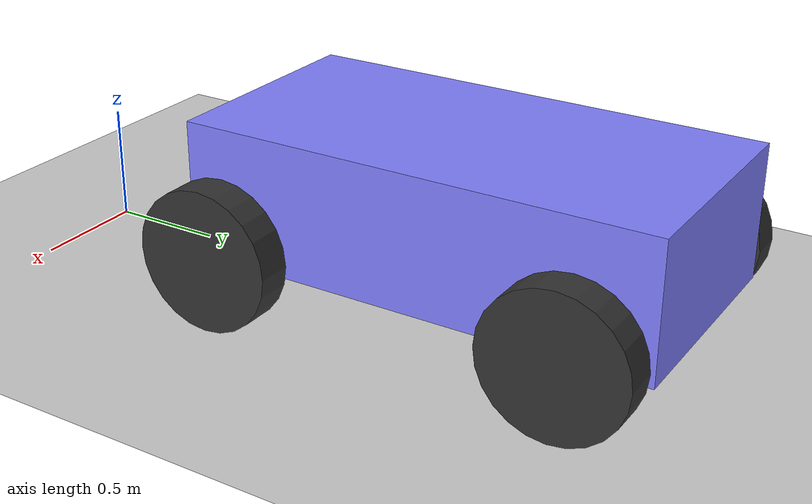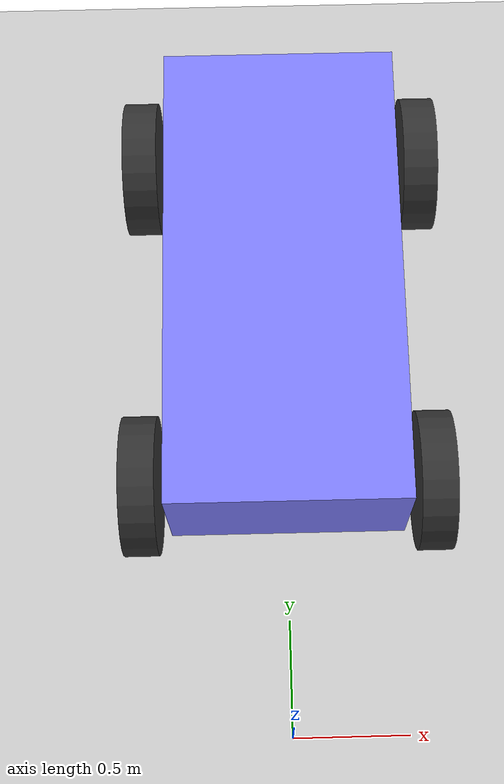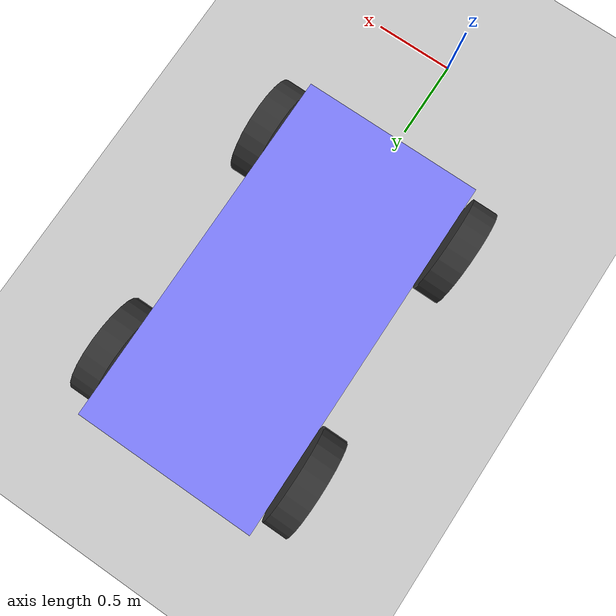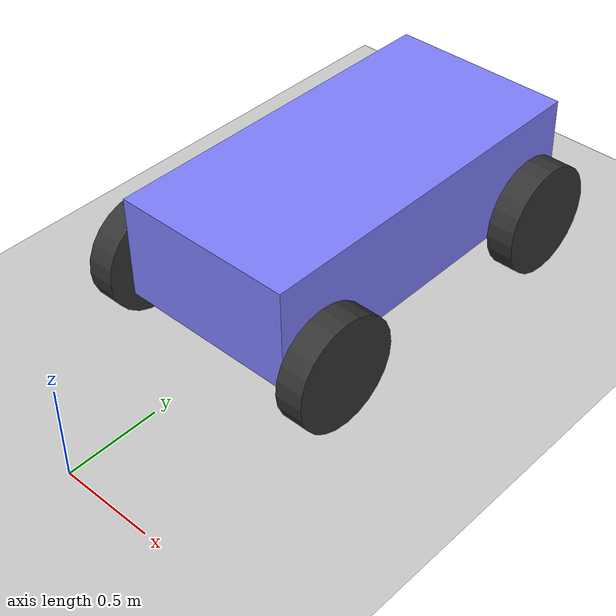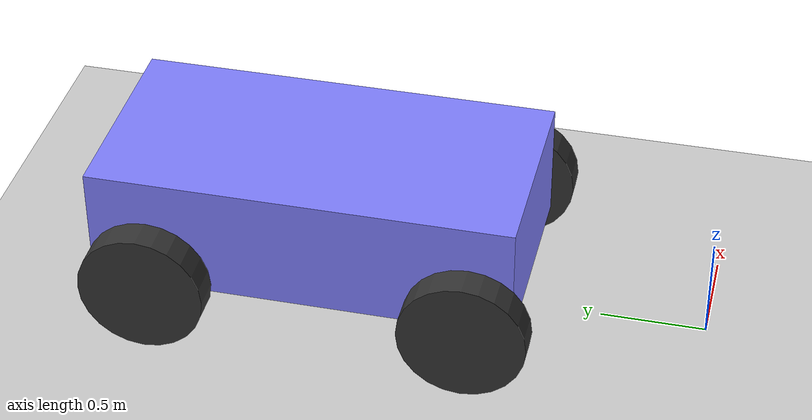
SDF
<?xml version="1.0" ?>
<sdf version="1.6">
  <world name="ackermann_steering">

    <physics name="1ms" type="ignored">
      <max_step_size>0.001</max_step_size>
      <real_time_factor>1.0</real_time_factor>
    </physics>
    <plugin
      filename="gz-sim-physics-system"
      name="gz::sim::systems::Physics">
    </plugin>
    <plugin
      filename="gz-sim-user-commands-system"
      name="gz::sim::systems::UserCommands">
    </plugin>
    <plugin
      filename="gz-sim-scene-broadcaster-system"
      name="gz::sim::systems::SceneBroadcaster">
    </plugin>
    <!-- Enable the IMU sensor system -->
    <plugin filename="gz-sim-imu-system"
      name="gz::sim::systems::Imu">
    </plugin>

    <light type="directional" name="sun">
      <cast_shadows>true</cast_shadows>
      <pose>0 0 10 0 0 0</pose>
      <diffuse>1 1 1 1</diffuse>
      <specular>0.5 0.5 0.5 1</specular>
      <attenuation>
        <range>1000</range>
        <constant>0.9</constant>
        <linear>0.01</linear>
        <quadratic>0.001</quadratic>
      </attenuation>
      <direction>-0.5 0.1 -0.9</direction>
    </light>

    <model name="ground_plane">
      <static>true</static>
      <link name="link">
        <collision name="collision">
          <geometry>
            <plane>
              <normal>0 0 1</normal>
              <size>100 100</size>
            </plane>
          </geometry>
          <surface>
            <friction>
              <ode>
                <mu>50</mu>
              </ode>
              <bullet>
                <friction>1</friction>
                <rolling_friction>0.1</rolling_friction>
              </bullet>
            </friction>
          </surface>
        </collision>
        <visual name="visual">
          <geometry>
            <plane>
              <normal>0 0 1</normal>
              <size>100 100</size>
            </plane>
          </geometry>
          <material>
            <ambient>0.8 0.8 0.8 1</ambient>
            <diffuse>0.8 0.8 0.8 1</diffuse>
            <specular>0.8 0.8 0.8 1</specular>
          </material>
        </visual>
      </link>
    </model>

    <model name='vehicle_blue'>
      <pose degrees="true">0 2 0.325 0 0 90</pose>

      <link name='chassis'>
        <pose>-0.151427 -0 0.175 0 -0 0</pose>
        <inertial>
          <mass>1.14395</mass>
          <inertia>
            <ixx>0.126164</ixx>
            <ixy>0</ixy>
            <ixz>0</ixz>
            <iyy>0.416519</iyy>
            <iyz>0</iyz>
            <izz>0.481014</izz>
          </inertia>
        </inertial>
        <visual name='visual'>
          <geometry>
            <box>
              <size>2.01142 1 0.568726</size>
            </box>
          </geometry>
          <material>
            <ambient>0.5 0.5 1.0 1</ambient>
            <diffuse>0.5 0.5 1.0 1</diffuse>
            <specular>0.0 0.0 1.0 1</specular>
          </material>
        </visual>
        <collision name='collision'>
          <geometry>
            <box>
              <size>2.01142 1 0.568726</size>
            </box>
          </geometry>
        </collision>
        <!-- ArduPilot requires an IMU sensor oriented FRD in the body frame -->
        <sensor name="imu_sensor" type="imu">
          <pose degrees="true">0 0 0 180 0 0</pose>
          <always_on>1</always_on>
          <update_rate>1000</update_rate>
        </sensor>
      </link>

      <link name='front_left_wheel'>
        <pose>0.554283 0.625029 -0.025 -1.5707 0 0</pose>
        <inertial>
          <mass>2</mass>
          <inertia>
            <ixx>0.145833</ixx>
            <ixy>0</ixy>
            <ixz>0</ixz>
            <iyy>0.145833</iyy>
            <iyz>0</iyz>
            <izz>0.125</izz>
          </inertia>
        </inertial>
        <visual name='visual'>
          <geometry>
            <cylinder>
              <length>0.15</length>
              <radius>0.3</radius>
            </cylinder>
          </geometry>
          <material>
            <ambient>0.2 0.2 0.2 1</ambient>
            <diffuse>0.2 0.2 0.2 1</diffuse>
            <specular>0.2 0.2 0.2 1</specular>
          </material>
        </visual>
        <collision name='collision'>
          <geometry>
            <cylinder>
              <length>0.15</length>
              <radius>0.3</radius>
            </cylinder>
          </geometry>
          <surface>
            <friction>
              <ode>
                <mu>0.5</mu>
                <mu2>1.0</mu2>
                <fdir1>0 0 1</fdir1>
              </ode>
              <bullet>
                <friction>0.5</friction>
                <friction2>1</friction2>
                <rolling_friction>0.1</rolling_friction>
              </bullet>
            </friction>
          </surface>
        </collision>
      </link>

      <link name='rear_left_wheel'>
        <pose>-0.957138 0.625029 -0.025 -1.5707 0 0</pose>
        <inertial>
          <mass>2</mass>
          <inertia>
            <ixx>0.145833</ixx>
            <ixy>0</ixy>
            <ixz>0</ixz>
            <iyy>0.145833</iyy>
            <iyz>0</iyz>
            <izz>0.125</izz>
          </inertia>
        </inertial>
        <visual name='visual'>
          <geometry>
            <cylinder>
              <length>0.15</length>
              <radius>0.3</radius>
            </cylinder>
          </geometry>
          <material>
            <ambient>0.2 0.2 0.2 1</ambient>
            <diffuse>0.2 0.2 0.2 1</diffuse>
            <specular>0.2 0.2 0.2 1</specular>
          </material>
        </visual>
        <collision name='collision'>
          <geometry>
            <cylinder>
              <length>0.15</length>
              <radius>0.3</radius>
            </cylinder>
          </geometry>
          <surface>
            <friction>
              <ode>
                <mu>0.5</mu>
                <mu2>1.0</mu2>
                <fdir1>0 0 1</fdir1>
              </ode>
              <bullet>
                <friction>0.5</friction>
                <friction2>1</friction2>
                <rolling_friction>0.5</rolling_friction>
              </bullet>
            </friction>
          </surface>
        </collision>
      </link>

      <link name='front_right_wheel'>
        <pose>0.554282 -0.625029 -0.025 -1.5707 0 0</pose>
        <inertial>
          <mass>2</mass>
          <inertia>
            <ixx>0.145833</ixx>
            <ixy>0</ixy>
            <ixz>0</ixz>
            <iyy>0.145833</iyy>
            <iyz>0</iyz>
            <izz>0.125</izz>
          </inertia>
        </inertial>
        <visual name='visual'>
          <geometry>
            <cylinder>
              <length>0.15</length>
              <radius>0.3</radius>
            </cylinder>
          </geometry>
          <material>
            <ambient>0.2 0.2 0.2 1</ambient>
            <diffuse>0.2 0.2 0.2 1</diffuse>
            <specular>0.2 0.2 0.2 1</specular>
          </material>
        </visual>
        <collision name='collision'>
          <geometry>
            <cylinder>
              <length>0.15</length>
              <radius>0.3</radius>
            </cylinder>
          </geometry>
          <surface>
            <friction>
              <ode>
                <mu>0.5</mu>
                <mu2>1.0</mu2>
                <fdir1>0 0 1</fdir1>
              </ode>
              <bullet>
                <friction>0.5</friction>
                <friction2>1</friction2>
                <rolling_friction>0.1</rolling_friction>
              </bullet>
            </friction>
          </surface>
        </collision>
      </link>

      <link name='rear_right_wheel'>
        <pose>-0.957138 -0.625029 -0.025 -1.5707 0 0</pose>
        <inertial>
          <mass>2</mass>
          <inertia>
            <ixx>0.145833</ixx>
            <ixy>0</ixy>
            <ixz>0</ixz>
            <iyy>0.145833</iyy>
            <iyz>0</iyz>
            <izz>0.125</izz>
          </inertia>
        </inertial>
        <visual name='visual'>
          <geometry>
            <cylinder>
              <length>0.15</length>
              <radius>0.3</radius>
            </cylinder>
          </geometry>
          <material>
            <ambient>0.2 0.2 0.2 1</ambient>
            <diffuse>0.2 0.2 0.2 1</diffuse>
            <specular>0.2 0.2 0.2 1</specular>
          </material>
        </visual>
        <collision name='collision'>
          <geometry>
            <cylinder>
              <length>0.15</length>
              <radius>0.3</radius>
            </cylinder>
          </geometry>
          <surface>
            <friction>
              <ode>
                <mu>0.5</mu>
                <mu2>1.0</mu2>
                <fdir1>0 0 1</fdir1>
              </ode>
              <bullet>
                <friction>0.5</friction>
                <friction2>1</friction2>
                <rolling_friction>0.5</rolling_friction>
              </bullet>
            </friction>
          </surface>
        </collision>
      </link>

      <link name="front_left_wheel_steering_link">
        <pose>0.554283 0.5 0.02 0 0 0</pose>
        <inertial>
          <mass>0.5</mass>
          <inertia>
            <ixx>0.0153</ixx>
            <iyy>0.025</iyy>
            <izz>0.0153</izz>
          </inertia>
        </inertial>
        <visual name="steering_link_visual">
          <pose>0 0 0 0 0 0</pose>
          <geometry>
            <cylinder>
              <length>0.1</length>
              <radius>0.03</radius>
            </cylinder>
          </geometry>
          <material>
            <ambient>1 1 1</ambient>
            <diffuse>1 1 1</diffuse>
          </material>
        </visual>
      </link>

      <link name="front_right_wheel_steering_link">
        <pose>0.554283 -0.5 0.02 0 0 0</pose>
        <inertial>
          <mass>0.5</mass>
          <inertia>
            <ixx>0.0153</ixx>
            <iyy>0.025</iyy>
            <izz>0.0153</izz>
          </inertia>
        </inertial>
        <visual name="steering_link_visual">
          <pose>0 0 0 0 0 0</pose>
          <geometry>
            <cylinder>
              <length>0.1</length>
              <radius>0.03</radius>
            </cylinder>
          </geometry>
          <material>
            <ambient>1 1 1</ambient>
            <diffuse>1 1 1</diffuse>
          </material>
        </visual>
      </link>

      <joint name="front_left_wheel_steering_joint" type="revolute">
        <child>front_left_wheel_steering_link</child>
        <parent>chassis</parent>
        <axis>
          <xyz>0 0 1</xyz>
          <limit>
            <lower>-0.6</lower>
            <upper>+0.6</upper>
            <velocity>1.0</velocity>
            <effort>25</effort>
          </limit>
          <use_parent_model_frame>1</use_parent_model_frame>
        </axis>
      </joint>

      <joint name="front_right_wheel_steering_joint" type="revolute">
        <parent>chassis</parent>
        <child>front_right_wheel_steering_link</child>
        <axis>
          <xyz>0 0 1</xyz>
          <limit>
            <lower>-0.6</lower>
            <upper>+0.6</upper>
            <velocity>1.0</velocity>
            <effort>25</effort>
          </limit>
        </axis>
      </joint>

      <joint name='front_left_wheel_joint' type='revolute'>
        <parent>front_left_wheel_steering_link</parent>
        <child>front_left_wheel</child>
        <axis>
          <xyz>0 0 1</xyz>
          <limit>
            <lower>-1.79769e+308</lower>
            <upper>1.79769e+308</upper>
          </limit>
        </axis>
      </joint>

      <joint name='front_right_wheel_joint' type='revolute'>
        <parent>front_right_wheel_steering_link</parent>
        <child>front_right_wheel</child>
        <axis>
          <xyz>0 0 1</xyz>
          <limit>
            <lower>-1.79769e+308</lower>
            <upper>1.79769e+308</upper>
          </limit>
        </axis>
      </joint>

      <joint name='rear_left_wheel_joint' type='revolute'>
        <parent>chassis</parent>
        <child>rear_left_wheel</child>
        <axis>
          <xyz>0 0 1</xyz>
          <limit>
            <lower>-1.79769e+308</lower>
            <upper>1.79769e+308</upper>
          </limit>
        </axis>
      </joint>

      <joint name='rear_right_wheel_joint' type='revolute'>
        <parent>chassis</parent>
        <child>rear_right_wheel</child>
        <axis>
          <xyz>0 0 1</xyz>
          <limit>
            <lower>-1.79769e+308</lower>
            <upper>1.79769e+308</upper>
          </limit>
        </axis>
      </joint>

      <!--
        Modify the AckermannSteering plugin to be steering only as the ArduPilot
        plugin does not supply cmd_vel, but forwards steering and throttle
        commands separately.
      -->
      <plugin
        filename="gz-sim-ackermann-steering-system"
        name="gz::sim::systems::AckermannSteering">
        <steering_only>true</steering_only>
        <use_actuator_msg>false</use_actuator_msg>
        <left_joint>front_left_wheel_joint</left_joint>
        <left_joint>rear_left_wheel_joint</left_joint>
        <right_joint>front_right_wheel_joint</right_joint>
        <right_joint>rear_right_wheel_joint</right_joint>
        <left_steering_joint>front_left_wheel_steering_joint</left_steering_joint>
        <right_steering_joint>front_right_wheel_steering_joint</right_steering_joint>
        <kingpin_width>1.0</kingpin_width>
        <steering_limit>0.5</steering_limit>
        <wheel_base>1.0</wheel_base>
        <wheel_separation>1.25</wheel_separation>
        <wheel_radius>0.3</wheel_radius>
        <min_velocity>-1</min_velocity>
        <max_velocity>1</max_velocity>
        <min_acceleration>-3</min_acceleration>
        <max_acceleration>3</max_acceleration>
      </plugin>

      <!--
        Add a velocity controller for the left rear wheel.
      -->
      <plugin
        filename="gz-sim-joint-controller-system"
        name="gz::sim::systems::JointController">
        <joint_name>rear_left_wheel_joint</joint_name>
        <use_force_commands>true</use_force_commands>
        <use_actuator_msg>false</use_actuator_msg>
        <p_gain>0.1</p_gain>
        <i_gain>0.0</i_gain>
        <d_gain>0.0</d_gain>
      </plugin>

      <!--
        Add a velocity controller for the right rear wheel.
      -->
      <plugin
        filename="gz-sim-joint-controller-system"
        name="gz::sim::systems::JointController">
        <joint_name>rear_right_wheel_joint</joint_name>
        <use_force_commands>true</use_force_commands>
        <use_actuator_msg>false</use_actuator_msg>
        <p_gain>0.1</p_gain>
        <i_gain>0.0</i_gain>
        <d_gain>0.0</d_gain>
      </plugin>

      <plugin name="ArduPilotPlugin"
        filename="ArduPilotPlugin">
        <fdm_addr>127.0.0.1</fdm_addr>
        <fdm_port_in>9002</fdm_port_in>
        <connectionTimeoutMaxCount>5</connectionTimeoutMaxCount>
        <lock_step>1</lock_step>
        <gazeboXYZToNED degrees="true">0 0 0 180 0 90</gazeboXYZToNED>
        <modelXYZToAirplaneXForwardZDown degrees="true">0 0 0 180 0 0</modelXYZToAirplaneXForwardZDown>
        <imuName>chassis::imu_sensor</imuName>

        <!-- steering -->
        <control channel="0">
          <jointName>front_left_wheel_steering_joint</jointName>
          <useForce>1</useForce>
          <multiplier>-1.571</multiplier>
          <offset>-0.5</offset>
          <servo_min>1000</servo_min>
          <servo_max>2000</servo_max>
          <type>COMMAND</type>
          <cmd_topic>/model/vehicle_blue/steer_angle</cmd_topic>
        </control>

        <!-- throttle -->
        <control channel="2">
          <jointName>rear_left_wheel_joint</jointName>
          <multiplier>100.0</multiplier>
          <offset>-0.5</offset>
          <servo_min>500</servo_min>
          <servo_max>2000</servo_max>
          <type>COMMAND</type>
          <cmd_topic>/model/vehicle_blue/joint/rear_left_wheel_joint/cmd_vel</cmd_topic>
        </control>
        <control channel="2">
          <jointName>rear_right_wheel_joint</jointName>
          <multiplier>100.0</multiplier>
          <offset>-0.5</offset>
          <servo_min>1000</servo_min>
          <servo_max>2000</servo_max>
          <type>COMMAND</type>
          <cmd_topic>/model/vehicle_blue/joint/rear_right_wheel_joint/cmd_vel</cmd_topic>
        </control>

      </plugin>

    </model>

  </world>
</sdf>
